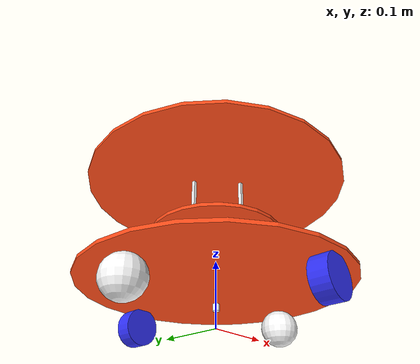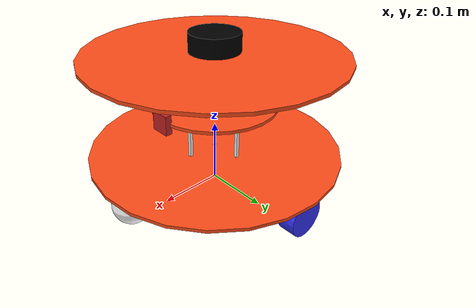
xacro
<?xml version="1.0"?>
<robot xmlns:xacro="http://www.ros.org/wiki/xacro"  name="robot">

    <xacro:include filename="gazebo_control.xacro" />

    <xacro:include filename="materials.xacro" />
    <xacro:include filename="inertial_macros.xacro" />
    <xacro:include filename="robot_body.xacro"/>
    <xacro:include filename="lidar.xacro"/>
    <xacro:include filename="camera.xacro"/>
    <xacro:include filename="imu.xacro"/>

</robot>

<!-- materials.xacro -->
<robot xmlns:xacro="http://www.ros.org/wiki/xacro" >

    <material name="white">
        <color rgba="1 1 1 1" />
    </material>

    <material name="orange">
        <color rgba="1 0.3 0.1 1"/>
    </material>

    <material name="blue">
        <color rgba="0.2 0.2 1 1"/>
    </material>

    <material name="black">
        <color rgba="0 0 0 1"/>
    </material>

</robot>

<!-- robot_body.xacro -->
<robot xmlns:xacro="http://www.ros.org/wiki/xacro" >

    <xacro:property name="wheel_radius" value="0.03"/>
    <xacro:property name="wheel_thickness" value="0.026"/>
    <xacro:property name="wheel_mass" value="0.10"/>

    <xacro:property name="wheel_offset_x" value="0"/>
    <xacro:property name="wheel_offset_y" value="0.175"/>
    <xacro:property name="wheel_offset_z" value="0.03"/>

    <xacro:property name="caster_wheel_radius" value="0.030"/>
    <xacro:property name="caster_wheel_mass" value="0.05"/>
    <xacro:property name="caster_wheel_offset_x" value="0.16"/>
    <xacro:property name="caster_wheel_offset_z" value="-${wheel_offset_z - wheel_radius + caster_wheel_radius}"/>

    <!-- base link-->
    <link name="base_link">
    </link>
    <!-- base link-->

    <!-- BASE_FOOTPRINT LINK -->

    <joint name="base_footprint_joint" type="fixed">
        <parent link="base_link"/>
        <child link="base_footprint"/>
        <origin xyz="0 0 0" rpy="0 0 0"/>
    </joint>

    <link name="base_footprint">
    </link>

    <xacro:include filename="body_components/chassis.xacro" />
    <xacro:include filename="body_components/supports.xacro" />
    <xacro:include filename="body_components/wheels.xacro" />

</robot>

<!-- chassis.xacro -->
<robot xmlns:xacro="http://www.ros.org/wiki/xacro" >

    <xacro:property name="plate_radius" value="0.20"/>

    <joint name="temp_joint" type="fixed">
        <parent link="base_link"/>
        <child link="temp"/>
        <origin xyz="0 0 ${wheel_offset_z}"/>
    </joint>

    <link name="temp" >
        <visual>
            <origin xyz="0 0 0"/>
            <geometry>
                <cylinder radius="0.005" length="0.01"/>
            </geometry>
            <material name="white"/>
        </visual>

        <collision>
            <origin xyz="0 0 0"/>
            <geometry>
                <cylinder radius="0.005" length="0.0"/>
            </geometry>
        </collision>

    </link>

    <!-- BOT_PLATE LINK -->
    <joint name="bot_plate_joint" type="fixed">
        <parent link="base_link"/>
        <child link="bot_plate"/>
        <origin xyz="0 0 ${2*wheel_offset_z}"/>
    </joint>

    <link name="bot_plate">
         <visual>
            <origin xyz="0 0 0"/>
            <geometry>
                <cylinder radius="${plate_radius}" length="0.005"/>
            </geometry>
            <material name="orange"/>
        </visual>

         <collision>
            <origin xyz="0 0 0"/>
            <geometry>
                <cylinder radius="${plate_radius}" length="0.005"/>
            </geometry>
        </collision>

        <xacro:inertial_cylinder mass="0.5" radius="${plate_radius}" length="0.005">
            <origin xyz="0 0 0" rpy="0 0 0"/>
        </xacro:inertial_cylinder>
    </link>

    <gazebo reference="bot_plate">
        <material>Gazebo/Orange</material>
    </gazebo>

    <!-- BOT_PLATE LINK -->

    <!-- MID_PLATE LINK -->

    <joint name="mid_plate_joint" type="fixed">
        <parent link="bot_plate"/>
        <child link="mid_plate"/>
        <origin xyz="0 0 0.08"/>
    </joint>

    <link name="mid_plate">
         <visual>
            <origin xyz="0 0 0"/>
            <geometry>
                <cylinder radius="${0.5*plate_radius}" length="0.005"/>
            </geometry>
            <material name="orange"/>
        </visual>

         <collision>
            <origin xyz="0 0 0"/>
            <geometry>
                <cylinder radius="${0.5*plate_radius}" length="0.005"/>
            </geometry>
        </collision>

        <xacro:inertial_cylinder mass="0.1" radius="${0.5*plate_radius}" length="0.005">
            <origin xyz="0 0 0" rpy="0 0 0"/>
        </xacro:inertial_cylinder>
    </link>

    <gazebo reference="mid_plate">
        <material>Gazebo/Orange</material>
    </gazebo>

    <!-- MID_PLATE LINK -->

    <!-- TOP_PLATE LINK -->

    <joint name="top_plate_joint" type="fixed">
        <parent link="mid_plate"/>
        <child link="top_plate"/>
        <origin xyz="0 0 0.08"/>
    </joint>

    <link name="top_plate">
         <visual>
            <origin xyz="0 0 0"/>
            <geometry>
                <cylinder radius="${plate_radius}" length="0.005"/>
            </geometry>
            <material name="orange"/>
        </visual>

         <collision>
            <origin xyz="0 0 0"/>
            <geometry>
                <cylinder radius="${plate_radius}" length="0.005"/>
            </geometry>
        </collision>

        <xacro:inertial_cylinder mass="0.1" radius="${plate_radius}" length="0.005">
            <origin xyz="0 0 0" rpy="0 0 0"/>
        </xacro:inertial_cylinder>
    </link>

    <gazebo reference="top_plate">
        <material>Gazebo/Orange</material>
    </gazebo>

    <!-- TOP_PLATE LINK -->

</robot>

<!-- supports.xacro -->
<robot xmlns:xacro="http://www.ros.org/wiki/xacro" >

   <!-- BOT_MID_SUPPORTS LINK -->

    <joint name="bot_sup_1_joint" type="fixed">
        <parent link="bot_plate"/>
        <child link="bot_mid_sup_1"/>
        <origin xyz="0.05 0 0"/>
    </joint>

    <link name="bot_mid_sup_1">
        <visual>
            <origin xyz="0 0 0.04"/>
            <geometry>
                <box size="0.005 0.005 0.08"/>
            </geometry>
            <material name="white"/>
        </visual>
        <collision>
            <origin xyz="0 0 0.04"/>
            <geometry>
                <box size="0.005 0.005 0.08"/>
            </geometry>
        </collision>
        <xacro:inertial_box mass="0.02" x="0.005" y="0.005" z="0.08">
            <origin xyz="0 0 0.04" rpy="0 0 0"/>
        </xacro:inertial_box>
    </link>

    <joint name="bot_sup_2_joint" type="fixed">
        <parent link="bot_plate"/>
        <child link="bot_mid_sup_2"/>
        <origin xyz="-0.05 0 0"/>
    </joint>

    <link name="bot_mid_sup_2">
        <visual>
            <origin xyz="0 0 0.04"/>
            <geometry>
                <box size="0.005 0.005 0.08"/>
            </geometry>
            <material name="white"/>
        </visual>
        <collision>
            <origin xyz="0 0 0.04"/>
            <geometry>
                <box size="0.005 0.005 0.08"/>
            </geometry>
        </collision>
        <xacro:inertial_box mass="0.02" x="0.005" y="0.005" z="0.08">
            <origin xyz="0 0 0.04" rpy="0 0 0"/>
        </xacro:inertial_box>
    </link>

    <joint name="bot_sup_3_joint" type="fixed">
        <parent link="bot_plate"/>
        <child link="bot_mid_sup_3"/>
        <origin xyz="0 0.05 0"/>
    </joint>

    <link name="bot_mid_sup_3">
        <visual>
            <origin xyz="0 0 0.04"/>
            <geometry>
                <box size="0.005 0.005 0.08"/>
            </geometry>
            <material name="white"/>
        </visual>
        <collision>
            <origin xyz="0 0 0.04"/>
            <geometry>
                <box size="0.005 0.005 0.08"/>
            </geometry>
        </collision>
        <xacro:inertial_box mass="0.02" x="0.005" y="0.005" z="0.08">
            <origin xyz="0 0 0.04" rpy="0 0 0"/>
        </xacro:inertial_box>
    </link>

    <joint name="bot_sup_4_joint" type="fixed">
        <parent link="bot_plate"/>
        <child link="bot_mid_sup_4"/>
        <origin xyz="0 -0.05 0"/>
    </joint>

    <link name="bot_mid_sup_4">
        <visual>
            <origin xyz="0 0 0.04"/>
            <geometry>
                <box size="0.005 0.005 0.08"/>
            </geometry>
            <material name="white"/>
        </visual>
        <collision>
            <origin xyz="0 0 0.04"/>
            <geometry>
                <box size="0.005 0.005 0.08"/>
            </geometry>
        </collision>
        <xacro:inertial_box mass="0.02" x="0.005" y="0.005" z="0.08">
            <origin xyz="0 0 0.04" rpy="0 0 0"/>
        </xacro:inertial_box>
    </link>

    <!-- BOT_MID_SUPPORTS LINK -->

    <!-- MID_TOP_SUPPORTS LINK -->

    <joint name="mid_sup_1_joint" type="fixed">
        <parent link="mid_plate"/>
        <child link="mid_top_sup_1"/>
        <origin xyz="0.05 0 0"/>
    </joint>

    <link name="mid_top_sup_1">
        <visual>
            <origin xyz="0 0 0.04"/>
            <geometry>
                <box size="0.005 0.005 0.08"/>
            </geometry>
            <material name="white"/>
        </visual>
        <collision>
            <origin xyz="0 0 0.04"/>
            <geometry>
                <box size="0.005 0.005 0.08"/>
            </geometry>
        </collision>
        <xacro:inertial_box mass="0.02" x="0.005" y="0.005" z="0.08">
            <origin xyz="0 0 0.04" rpy="0 0 0"/>
        </xacro:inertial_box>
    </link>

    <joint name="mid_sup_2_joint" type="fixed">
        <parent link="mid_plate"/>
        <child link="mid_top_sup_2"/>
        <origin xyz="-0.05 0 0"/>
    </joint>

    <link name="mid_top_sup_2">
        <visual>
            <origin xyz="0 0 0.04"/>
            <geometry>
                <box size="0.005 0.005 0.08"/>
            </geometry>
            <material name="white"/>
        </visual>
        <collision>
            <origin xyz="0 0 0.04"/>
            <geometry>
                <box size="0.005 0.005 0.08"/>
            </geometry>
        </collision>
        <xacro:inertial_box mass="0.02" x="0.005" y="0.005" z="0.08">
            <origin xyz="0 0 0.04" rpy="0 0 0"/>
        </xacro:inertial_box>
    </link>

    <joint name="mid_sup_3_joint" type="fixed">
        <parent link="mid_plate"/>
        <child link="mid_top_sup_3"/>
        <origin xyz="0 0.05 0"/>
    </joint>

    <link name="mid_top_sup_3">
        <visual>
            <origin xyz="0 0 0.04"/>
            <geometry>
                <box size="0.005 0.005 0.08"/>
            </geometry>
            <material name="white"/>
        </visual>
        <collision>
            <origin xyz="0 0 0.04"/>
            <geometry>
                <box size="0.005 0.005 0.08"/>
            </geometry>
        </collision>
        <xacro:inertial_box mass="0.02" x="0.005" y="0.005" z="0.08">
            <origin xyz="0 0 0.04" rpy="0 0 0"/>
        </xacro:inertial_box>
    </link>

    <joint name="mid_sup_4_joint" type="fixed">
        <parent link="mid_plate"/>
        <child link="mid_top_sup_4"/>
        <origin xyz="0 -0.05 0"/>
    </joint>

    <link name="mid_top_sup_4">
        <visual>
            <origin xyz="0 0 0.04"/>
            <geometry>
                <box size="0.005 0.005 0.08"/>
            </geometry>
            <material name="white"/>
        </visual>
        <collision>
            <origin xyz="0 0 0.04"/>
            <geometry>
                <box size="0.005 0.005 0.08"/>
            </geometry>
        </collision>
        <xacro:inertial_box mass="0.02" x="0.005" y="0.005" z="0.08">
            <origin xyz="0 0 0.04" rpy="0 0 0"/>
        </xacro:inertial_box>
    </link>

    <!-- MID_TOP_SUPPORTS LINK -->

</robot>

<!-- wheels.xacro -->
<robot xmlns:xacro="http://www.ros.org/wiki/xacro" >

    <!-- RIGHT WHEEL LINK -->
    <joint name="right_wheel_joint" type="continuous">
        <parent link="base_link"/>
        <child link="right_wheel"/>
        <origin xyz="0 ${-wheel_offset_y} ${wheel_offset_z}" rpy="${pi/2} 0 0" />
        <axis xyz="0 0 -1"/>
    </joint>

    <link name="right_wheel">
        <visual>
            <geometry>
                <cylinder radius="${wheel_radius}" length="${wheel_thickness}"/>
            </geometry>
            <material name="blue"/>
        </visual>
        <collision>
            <geometry>
                <cylinder radius="${wheel_radius}" length="${wheel_thickness}"/>
            </geometry>
        </collision>
        <xacro:inertial_cylinder mass="${wheel_mass}" length="${wheel_thickness}" radius="${wheel_radius}">
            <origin xyz="0 0 0" rpy="0 0 0"/>
        </xacro:inertial_cylinder>
    </link>

    <gazebo reference="right_wheel">
        <material>Gazebo/Blue</material>
        <surface>
            <friction>
              <ode>
                <mu>0.33</mu>
                <mu2>0.33</mu2>
              </ode>
            </friction>
          </surface>
    </gazebo>

    <!-- RIGHT WHEEL LINK -->

    <!-- LEFT WHEEL LINK -->

     <joint name="left_wheel_joint" type="continuous">
        <parent link="base_link"/>
        <child link="left_wheel"/>
        <origin xyz="0 ${wheel_offset_y} ${wheel_offset_z}" rpy="-${pi/2} 0 0" />
        <axis xyz="0 0 1"/>
    </joint>

    <link name="left_wheel">
        <visual>
            <geometry>
                <cylinder radius="${wheel_radius}" length="${wheel_thickness}"/>
            </geometry>
            <material name="blue"/>
        </visual>
        <collision>
            <geometry>
                <cylinder radius="${wheel_radius}" length="${wheel_thickness}"/>
            </geometry>
        </collision>
        <xacro:inertial_cylinder mass="${wheel_mass}" length="${wheel_thickness}" radius="${wheel_radius}">
            <origin xyz="0 0 0" rpy="0 0 0"/>
        </xacro:inertial_cylinder>
    </link>

    <gazebo reference="left_wheel">
        <material>Gazebo/Blue</material>
        <surface>
            <friction>
              <ode>
                <mu>0.33</mu>
                <mu2>0.33</mu2>
              </ode>
            </friction>
          </surface>
    </gazebo>

   <!-- LEFT WHEEL LINK -->

    <!-- FRONT CASTER WHEEL LINK -->

    <joint name="front_caster_wheel_joint" type="fixed">
        <parent link="bot_plate"/>
        <child link="front_caster_wheel"/>
        <origin xyz="${caster_wheel_offset_x} 0 ${caster_wheel_offset_z}"/>
    </joint>

    <link name="front_caster_wheel">
        <visual>
            <geometry>
                <sphere radius="${caster_wheel_radius}"/>
            </geometry>
            <material name="white"/>
        </visual>
        <collision>
            <geometry>
                <sphere radius="${caster_wheel_radius}"/>
            </geometry>
        </collision>
        <xacro:inertial_sphere mass="${caster_wheel_mass}" radius="${caster_wheel_radius}">
            <origin xyz="0 0 0" rpy="0 0 0"/>
        </xacro:inertial_sphere>
    </link>

    <gazebo reference="front_caster_wheel">
        <material>Gazebo/Red</material>
        <mu1 value="0.1"/>
        <mu2 value="0.1"/>
    </gazebo>

    <!-- FRONT CASTER WHEEL LINK -->

    <!-- back CASTER WHEEL LINK -->

    <joint name="back_caster_wheel_joint" type="fixed">
        <parent link="bot_plate"/>
        <child link="back_caster_wheel"/>
        <origin xyz="-${caster_wheel_offset_x} 0 ${caster_wheel_offset_z}"/>
    </joint>

    <link name="back_caster_wheel">
        <visual>
            <geometry>
                <sphere radius="${caster_wheel_radius}"/>
            </geometry>
            <material name="white"/>
        </visual>
        <collision>
            <geometry>
                <sphere radius="${caster_wheel_radius}"/>
            </geometry>
        </collision>
        <xacro:inertial_sphere mass="${caster_wheel_mass}" radius="${caster_wheel_radius}">
            <origin xyz="0 0 0" rpy="0 0 0"/>
        </xacro:inertial_sphere>
    </link>

    <gazebo reference="back_caster_wheel">
        <material>Gazebo/Red</material>
        <mu1 value="0.1"/>
        <mu2 value="0.1"/>
    </gazebo>

    <!-- BACK CASTER WHEEL LINK -->

</robot>

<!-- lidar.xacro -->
<robot xmlns:xacro="http://www.ros.org/wiki/xacro" >

    <xacro:include filename="inertial_macros.xacro" />

    <joint name="laser_joint" type="fixed">
        <parent link="top_plate"/>
        <child link="laser_frame"/>
        <origin xyz="0 0 0.0175" rpy="0 0 0" />
    </joint>

    <link name="laser_frame">
        <visual>
            <geometry>
                <cylinder radius="0.04" length="0.03"/>
            </geometry>
            <material name="black"/>
        </visual>
        <collision>
            <geometry>
                <cylinder radius="0.04" length="0.03"/>
            </geometry>
        </collision>
        <xacro:inertial_cylinder mass="0.05" length="0.03" radius="0.04">
            <origin xyz="0 0 0" rpy="0 0 0"/>
        </xacro:inertial_cylinder>
    </link>

    <gazebo reference="laser_frame">
        <material>Gazebo/Black</material>
        <sensor name="laser" type="ray">
            <pose> 0 0 0 0 0 0</pose>
            <visualize> false </visualize>
            <update_rate> 5 </update_rate>

            <ray>
                <scan>
                    <horizontal>
                        <samples>780</samples>
                        <resolution>0.5</resolution>
                        <min_angle>-3.14</min_angle>
                        <max_angle>3.14</max_angle>
                    </horizontal>
                </scan>
                <range>
                    <min>0.1</min>
                    <max>12</max>
                    <resolution>0.01</resolution>
                </range>
            </ray>

            <plugin name="laser_controller" filename="libgazebo_ros_ray_sensor.so">
                <ros>
                    <argument>~/out:=scan</argument>
                </ros>
                <output_type>sensor_msgs/LaserScan</output_type>
                <frame_name>laser_frame</frame_name>
            </plugin>

        </sensor>
    </gazebo>

</robot>

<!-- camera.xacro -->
<robot xmlns:xacro="http://www.ros.org/wiki/xacro" >

    <joint name="camera_joint" type="fixed">
        <parent link="mid_plate"/>
        <child link="camera_link"/>
        <origin xyz="0.10 0 0" rpy="0 0 0"/>
    </joint>

    <link name="camera_link">
        <visual>
            <geometry>
                <box size="0.010 0.03 0.03"/>
            </geometry>
            <material name="red"/>
        </visual>
    </link>

    <joint name="camera_optical_joint" type="fixed">
        <parent link="camera_link"/>
        <child link="camera_link_optical"/>
        <origin xyz="0 0 0" rpy="${-pi/2} 0 ${-pi/2}"/>
    </joint>

    <link name="camera_link_optical"></link>

    <gazebo reference="camera_link">
        <material>Gazebo/Red</material>

        <sensor name="camera" type="camera">
            <pose> 0 0 0 0 0 0 </pose>
            <visualize>true</visualize>
            <update_rate>10</update_rate>
            <camera>
                <horizontal_fov>1.089</horizontal_fov>
                <image>
                    <format>R8G8B8</format>
                    <width>640</width>
                    <height>480</height>
                </image>
                <clip>
                    <near>0.05</near>
                    <far>8.0</far>
                </clip>
            </camera>
            <plugin name="camera_controller" filename="libgazebo_ros_camera.so">
                <frame_name>camera_link_optical</frame_name>
            </plugin>
        </sensor>
    </gazebo>

</robot>

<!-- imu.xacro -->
<robot xmlns:xacro="http://www.ros.org/wiki/xacro" >

    <joint name="imu_joint" type="fixed">
        <parent link="bot_plate"/>
        <child link="imu_link"/>
        <origin xyz="0 0 0" rpy="0 0 0" />
    </joint>

    <link name="imu_link">
        <visual>
            <origin xyz="0 0 0"/>
            <geometry>
                <box size="0.005 0.005 0.005"/>
            </geometry>
            <material name="white"/>
        </visual>
        <collision>
            <origin xyz="0 0 0"/>
            <geometry>
                <box size="0.005 0.005 0.005"/>
            </geometry>
        </collision>
        <xacro:inertial_box mass="0.008" x="0.005" y="0.005" z="0.005">
            <origin xyz="0 0 0" rpy="0 0 0"/>
        </xacro:inertial_box>
    </link>

    <gazebo reference="imu_link">
        <sensor name="imu_sensor" type="imu">
            <always_on>true</always_on>
            <update_rate>100</update_rate>
            <visualize>true</visualize>
            <topic>imu</topic>

            <plugin name="imu_plugin" filename="libgazebo_ros_imu_sensor.so">
                <topicName>imu</topicName>
                <bodyName>imu_link</bodyName>
                <updateRateHZ>1.0</updateRateHZ>
                <gaussianNoise>0.0</gaussianNoise>
                <xyzOffset>0 0 0</xyzOffset>
                <rpyOffset>0 0 0</rpyOffset>
                <frameName>imu_link</frameName>
                <initialOrientationAsReference>false</initialOrientationAsReference>
                <ros>
            	<remapping>~/out:=imu</remapping>
          	</ros>
            </plugin>
        </sensor>
    </gazebo>

</robot>
